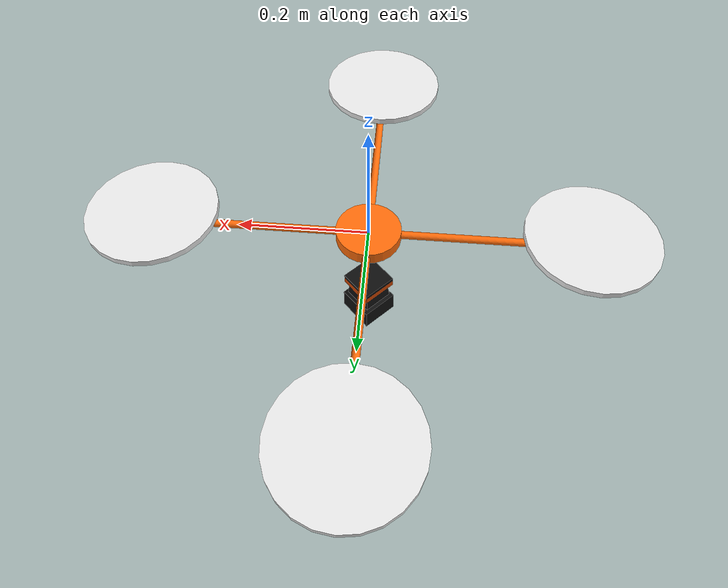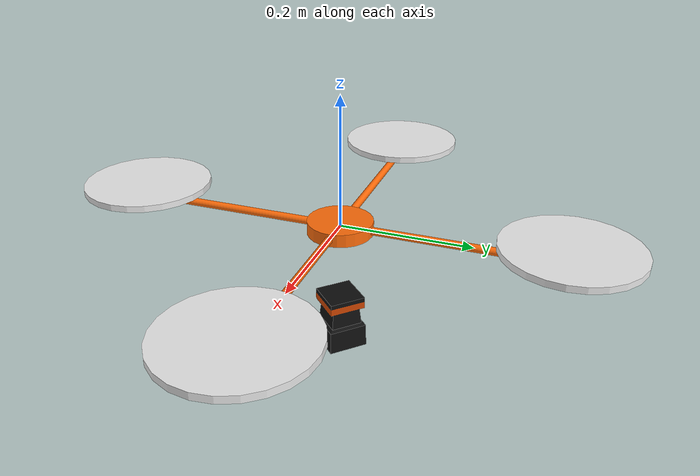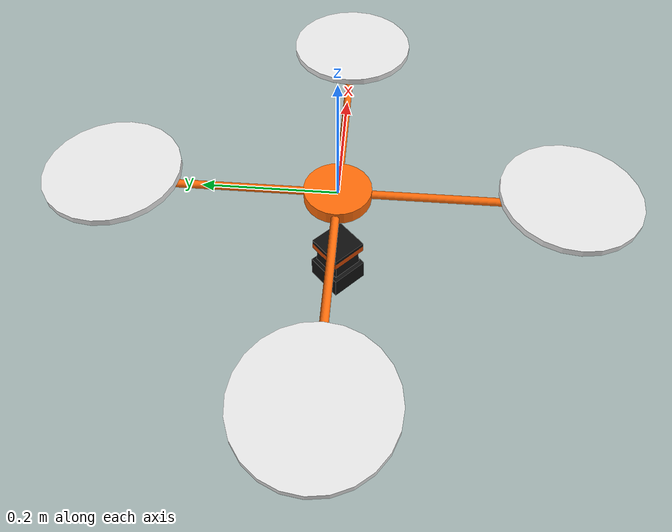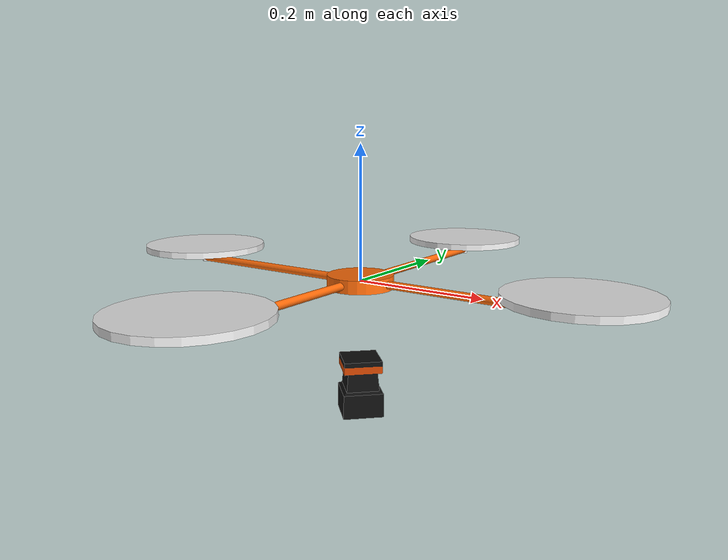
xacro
<?xml version="1.0"?>

<robot name="quadrotor" xmlns:xacro="http://www.ros.org/wiki/xacro">

    <xacro:property name="M_PI" value="3.1415926535897931" />

    <!-- Included URDF Files -->
    <xacro:include filename="$(find ogm_ae)/robot_description/urdf/quad.xacro" />

    <!-- Instantiate quadrotor_base_macro once (has no parameters atm) -->
    <xacro:quadrotor_base_macro />

    <xacro:arg name="world_frame" default="world"/>
    <xacro:arg name="base_link_frame" default="base_link"/>

    <xacro:include filename="$(find ogm_ae)/robot_description/urdf/hokuyo_utm30lx.urdf.xacro" />
    <xacro:hokuyo_utm30lx name="laser" parent="base_link" ros_topic="scan" update_rate="40" ray_count="640" min_angle="-50" max_angle="50">
      <origin xyz="0.0 0.0 -0.15" rpy="0 0 0.7853981633974483"/>
    </xacro:hokuyo_utm30lx>

    <xacro:include filename="$(find ogm_ae)/robot_description/urdf/quadrotor_plugins.gazebo.xacro" />

</robot>

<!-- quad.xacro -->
<robot name="quadrotor" xmlns:xacro="http://ros.org/wiki/xacro">

  <!-- Constants for robot dimensions -->
  <xacro:property name="PI" value="3.1415926535897931"/>
  <xacro:property name="mass" value="0.755" /> <!-- arbitrary value for mass -->
  <xacro:property name="width" value="0.1" /> <!-- Square dimensions (widthxwidth) of beams -->
  <xacro:property name="height1" value="2" /> <!-- Link 1 -->
  <xacro:property name="height2" value="1" /> <!-- Link 2 -->
  <xacro:property name="height3" value="1" /> <!-- Link 3 -->
  <xacro:property name="camera_link" value="0.05" /> <!-- Size of square 'camera' box -->
  <xacro:property name="axel_offset" value="0.05" /> <!-- Space btw top of beam and the each joint -->

<!-- From Matlab

J1=55710.50413e-7;
J2=55710.50413e-7;
J3=105053.7595e-7;
J=diag([J1 J2 J3]);
m=0.755;

-->

  <xacro:macro name="quadrotor_base_macro">
  <link name="base_link">
  <gravity>true</gravity>
    <inertial>
      <origin xyz="0 0 0" rpy="0 0 0"/>
      <mass value="0.755"/>
      <inertia
        ixx="0.005571050413" ixy="0.0" ixz="0.0"
        iyy="0.005571050413" iyz="0.0"
        izz="0.01050537595"/>
    </inertial>
    <origin xyz="0 0 0" rpy="0 0 0" />
    <collision name='collision'>
      <geometry>
        <sphere radius = "0.0001" />
      </geometry>
    </collision>

    <visual name="quadrotor_center">
  <geometry>
  <cylinder radius="0.05" length="0.02" />
  </geometry>
  <material name="orange">
  <color rgba="${255/255} ${108/255} ${10/255} 1.0"/>
  </material>
    </visual>

    <visual name='quadrotor_x_arms'>
  <origin xyz = "0.0 0.0 0.0" rpy ="0.0 1.5707 0.0" />
  <geometry>
  <cylinder radius=".006" length="0.66" />
  </geometry>
  <material name="orange">
  <ambient> 0 0 0 1 </ambient>
  </material>
    </visual>

    <visual name='quadrotor_y_arms'>
<origin xyz="0.0 0.0 0.0" rpy="0.0 1.5707 1.5707" />
<geometry>
  <cylinder radius=".006" length="0.66" />
</geometry>
<material name="orange">
<ambient> 0 0 0 1 </ambient>
</material>
    </visual>

    <visual name='motor_pos_x'>
<origin xyz="0.33 0.0 0.006" rpy="0.0 0.0 0.0" />
<geometry>
<cylinder radius=".006" length="0.024" />
</geometry>
<material name="white">
  <ambient> 0.0 0.0 0.0 1.0 </ambient>
</material>
  </visual>
    <visual name='prop_pos_x'>
<origin xyz="0.33 0.0 0.02" rpy="0.0 0.0 0.0"/>
<geometry>
<cylinder radius=".1" length="0.01" />
</geometry>
<material name="white">
<ambient> 0.5 0.5 0.5 1.0 </ambient>
</material>
    </visual>
    <visual name='motor_neg_x'>
<origin xyz ="-0.33 0.0 0.006" rpy="0.0 0.0 0.0"/>
<geometry>
<cylinder radius=".006" length="0.024"/>
</geometry>
<material name="white">
<ambient> 0.0 0.0 0.0 1.0 </ambient>
</material>
    </visual>
    <visual name='prop_neg_x'>
<origin xyz="-0.33 0.0 0.02" rpy="0.0 0.0 0.0"/>
<geometry>
<cylinder   radius=".1" length="0.01" />
</geometry>
<material name="white">
<ambient> 0.5 0.5 0.5 1.0 </ambient>
</material>
    </visual>
    <visual name='motor_pos_y'>
<origin xyz="0.0 0.33 0.006" rpy="0.0 0.0 0.0"/>
<geometry>
<cylinder radius=".006" length="0.024" />
</geometry>
<material name="white">
<ambient> 0.0 0.0 0.0 1.0 </ambient>
</material>
    </visual>
    <visual name='prop_pos_y'>
<origin xyz="0.0 0.33 0.02" rpy="0.0 0.0 0.0" />
<geometry>
<cylinder radius = ".1" length="0.01"/>
</geometry>
<material name="white">
<ambient> 0.5 0.5 0.5 1.0 </ambient>
</material>
    </visual>
    <visual name='motor_neg_y'>
<origin xyz="0.0 -0.33 0.006" rpy="0.0 0.0 0.0"/>
<geometry>
<cylinder radius=".006" length="0.024"/>
</geometry>
<material name="white">
<ambient> 0.0 0.0 0.0 1.0 </ambient>
</material>
    </visual>
    <visual name='prop_neg_y'>
<origin xyz="0.0 -0.33 0.02" rpy = "0.0 0.0 0.0"/>
<geometry>
<cylinder radius=".1" length="0.01"/>
</geometry>
<material name="white">
<ambient> 0.5 0.5 0.5 1.0 </ambient>
</material>
    </visual>

  </link>
  </xacro:macro>
</robot>

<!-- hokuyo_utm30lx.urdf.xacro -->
<robot xmlns:xacro="http://ros.org/wiki/xacro">
    <xacro:property name="M_PI" value="3.1415926535897931" />

    <xacro:macro name="hokuyo_utm30lx" params="name parent *origin ros_topic update_rate ray_count min_angle max_angle">
      <joint name="${name}_joint" type="fixed">
        <xacro:insert_block name="origin" />
        <parent link="${parent}"/>
        <child link="${name}"/>
      </joint>

      <link name="${name}">
        <inertial>
          <mass value="0.270" />
          <origin xyz="0 0 0" rpy="0 0 0" />
          <inertia ixx="2.632e-4" ixy="0" ixz="0" iyy="2.632e-4" iyz="0" izz="1.62e-4" />
        </inertial>
        <visual>
          <origin xyz="0 0 0" rpy="0 0 0" />
          <geometry>
          <mesh filename="package://hector_sensors_description/meshes/hokuyo_utm30lx/hokuyo_utm_30lx$(optenv TEST_SELF_FILTER).dae"/>
        </geometry>
        </visual>
        <collision>
          <origin xyz="0 0 -0.0115" rpy="0 0 0" />
          <geometry>
          <box size="0.058 0.058 0.087" />
        </geometry>
        </collision>
      </link>

      <gazebo reference="${name}">
        <sensor type="ray" name="${name}">
          <always_on>true</always_on>
          <update_rate>${update_rate}</update_rate>
          <pose>0 0 0 0 0 0</pose>
          <visualize>false</visualize>
          <ray>
            <scan>
              <horizontal>
                <samples>${ray_count}</samples>
                <resolution>1</resolution>
                <min_angle>${min_angle * M_PI/180}</min_angle>
                <max_angle>${max_angle * M_PI/180}</max_angle>
              </horizontal>
            </scan>
            <range>
              <min>0.08</min>
              <max>30.0</max>
              <resolution>0.01</resolution>
            </range>
          </ray>
          <plugin name="gazebo_ros_${name}_controller" filename="libgazebo_ros_laser.so">
            <gaussianNoise>0.005</gaussianNoise>
            <alwaysOn>true</alwaysOn>
            <updateRate>${update_rate}</updateRate>
            <topicName>${ros_topic}</topicName>
            <frameName>${name}</frameName>
          </plugin>
        </sensor>
      </gazebo>

    </xacro:macro>
  </robot>

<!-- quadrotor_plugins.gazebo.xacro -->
<robot xmlns:xacro="http://www.ros.org/wiki/xacro">

  <arg name="world_frame" default="world"/> <!-- This should actually be "/world". See https://github.com/ros-simulation/gazebo_ros_pkgs/pull/324 -->
  <arg name="base_link_frame" default="base_link"/>

  <xacro:include filename="$(find ogm_ae)/robot_description/urdf/quadrotor_sensors.gazebo.xacro" />

  <!-- Quadrotor Gazebo Plugins -->
  <xacro:quadrotor_sensors />

</robot>
